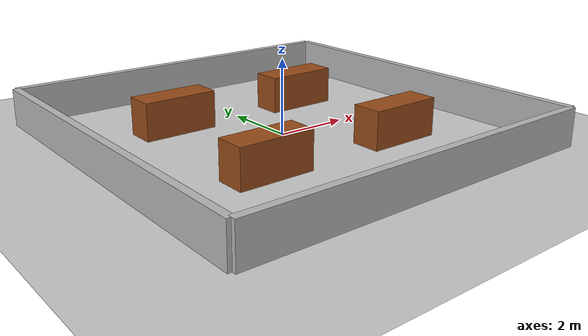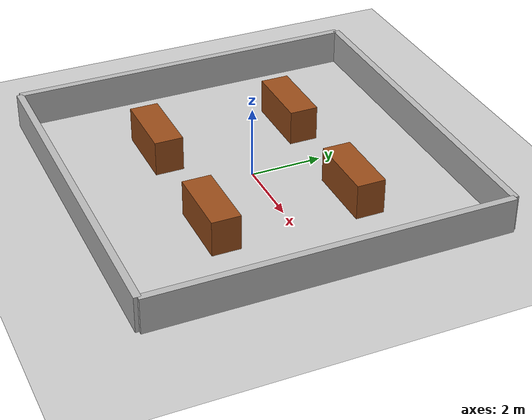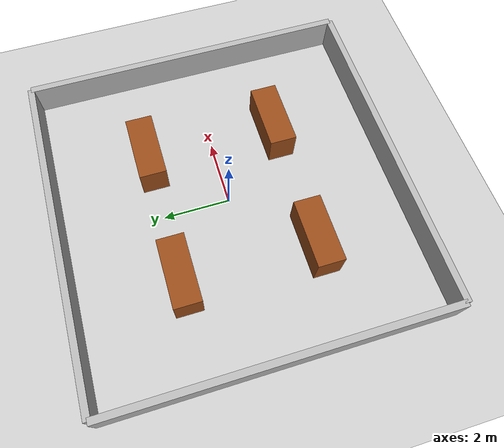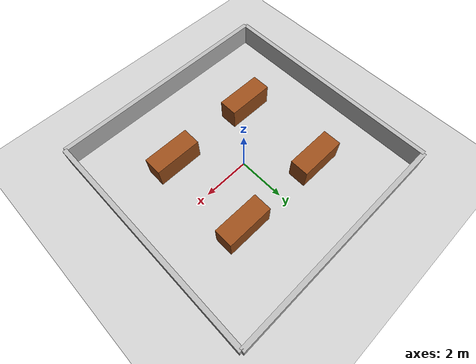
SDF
<?xml version="1.0" ?>
<sdf version="1.6">

<world name="warehouse">

  <include>
    <uri>model://ground_plane</uri>
  </include>

  <include>
    <uri>model://sun</uri>
  </include>

  <!-- Wall 1 -->
  <model name="wall1">
    <static>true</static>
    <link name="link">
      <collision name="collision">
        <geometry>
          <box>
            <size>10 0.2 1</size>
          </box>
        </geometry>
      </collision>

      <visual name="visual">
        <geometry>
          <box>
            <size>10 0.2 1</size>
          </box>
        </geometry>
      </visual>

      <pose>0 5 0.5 0 0 0</pose>
    </link>
  </model>

  <!-- Wall 2 -->

  <model name="wall2">
    <static>true</static>
    <link name="link">

      <collision name="collision">
        <geometry>
          <box>
            <size>10 0.2 1</size>
          </box>
        </geometry>
      </collision>

      <visual name="visual">
        <geometry>
          <box>
            <size>10 0.2 1</size>
          </box>
        </geometry>
      </visual>

      <pose>0 -5 0.5 0 0 0</pose>

    </link>
  </model>

  <!-- Wall 3 -->

  <model name="wall3">

    <static>true</static>

    <link name="link">

      <collision name="collision">

        <geometry>

          <box>

            <size>0.2 10 1</size>

          </box>

        </geometry>

      </collision>

      <visual name="visual">

        <geometry>

          <box>

            <size>0.2 10 1</size>

          </box>

        </geometry>

      </visual>

      <pose>5 0 0.5 0 0 0</pose>

    </link>

  </model>

  <!-- Wall 4 -->

  <model name="wall4">

    <static>true</static>

    <link name="link">

      <collision name="collision">

        <geometry>

          <box>

            <size>0.2 10 1</size>

          </box>

        </geometry>

      </collision>

      <visual name="visual">

        <geometry>

          <box>

            <size>0.2 10 1</size>

          </box>

        </geometry>

      </visual>

      <pose>-5 0 0.5 0 0 0</pose>

    </link>

  </model>

<model name="shelf1">
  <static>true</static>
  <pose>-2 2 0.5 0 0 0</pose>

  <link name="link">
    <collision name="collision">
      <geometry>
        <box>
          <size>2 0.8 1</size>
        </box>
      </geometry>
    </collision>

    <visual name="visual">
      <geometry>
        <box>
          <size>2 0.8 1</size>
        </box>
      </geometry>

      <material>
        <ambient>0.6 0.3 0.1 1</ambient>
        <diffuse>0.6 0.3 0.1 1</diffuse>
      </material>
    </visual>
  </link>
</model>

<model name="shelf2">
  <static>true</static>
  <pose>2 2 0.5 0 0 0</pose>

  <link name="link">
    <collision name="collision">
      <geometry>
        <box>
          <size>2 0.8 1</size>
        </box>
      </geometry>
    </collision>

    <visual name="visual">
      <geometry>
        <box>
          <size>2 0.8 1</size>
        </box>
      </geometry>

      <material>
        <ambient>0.6 0.3 0.1 1</ambient>
        <diffuse>0.6 0.3 0.1 1</diffuse>
      </material>
    </visual>
  </link>
</model>

<model name="shelf3">
  <static>true</static>
  <pose>-2 -2 0.5 0 0 0</pose>

  <link name="link">
    <collision name="collision">
      <geometry>
        <box>
          <size>2 0.8 1</size>
        </box>
      </geometry>
    </collision>

    <visual name="visual">
      <geometry>
        <box>
          <size>2 0.8 1</size>
        </box>
      </geometry>

      <material>
        <ambient>0.6 0.3 0.1 1</ambient>
        <diffuse>0.6 0.3 0.1 1</diffuse>
      </material>
    </visual>
  </link>
</model>

<model name="shelf4">
  <static>true</static>
  <pose>2 -2 0.5 0 0 0</pose>

  <link name="link">
    <collision name="collision">
      <geometry>
        <box>
          <size>2 0.8 1</size>
        </box>
      </geometry>
    </collision>

    <visual name="visual">
      <geometry>
        <box>
          <size>2 0.8 1</size>
        </box>
      </geometry>

      <material>
        <ambient>0.6 0.3 0.1 1</ambient>
        <diffuse>0.6 0.3 0.1 1</diffuse>
      </material>
    </visual>
  </link>
</model>

</world>

</sdf>
